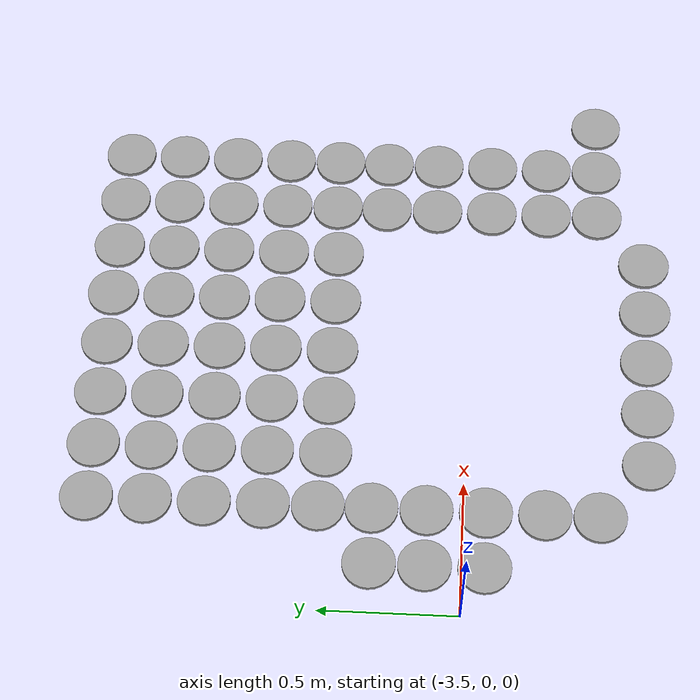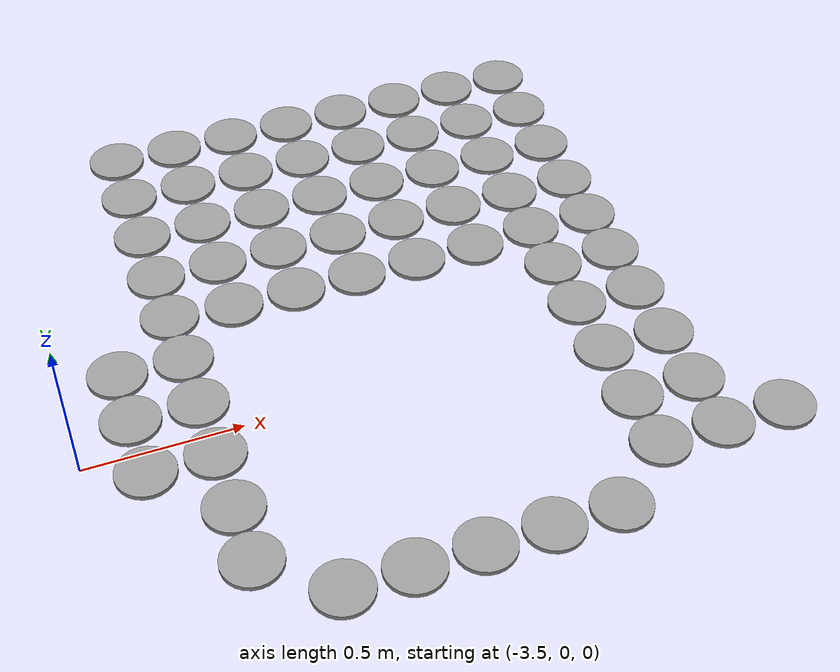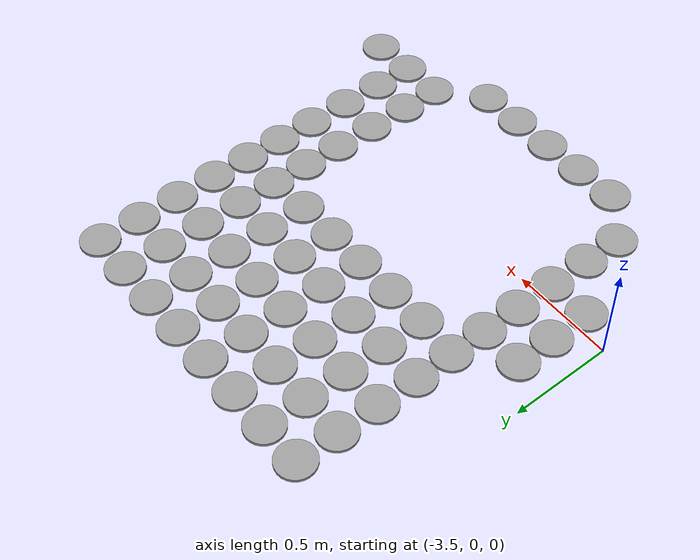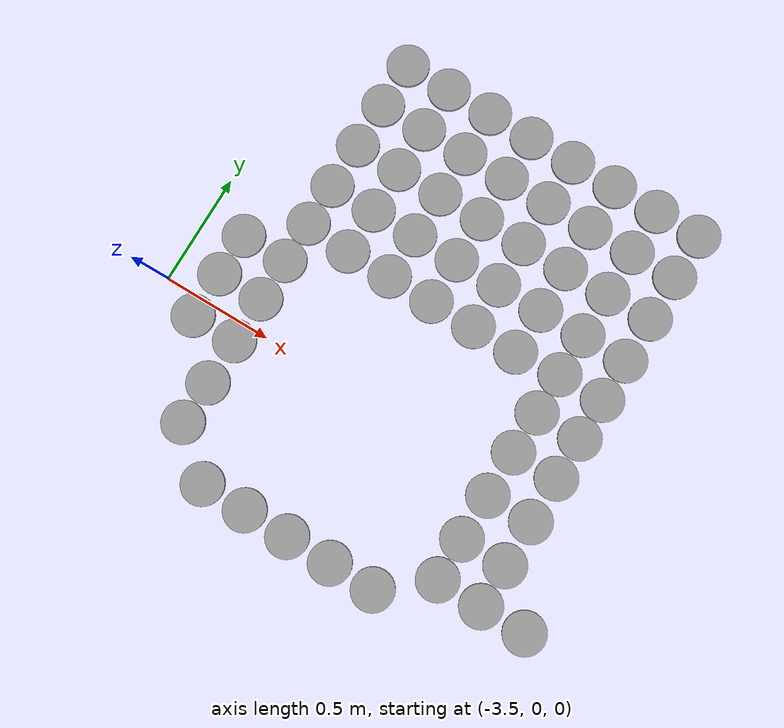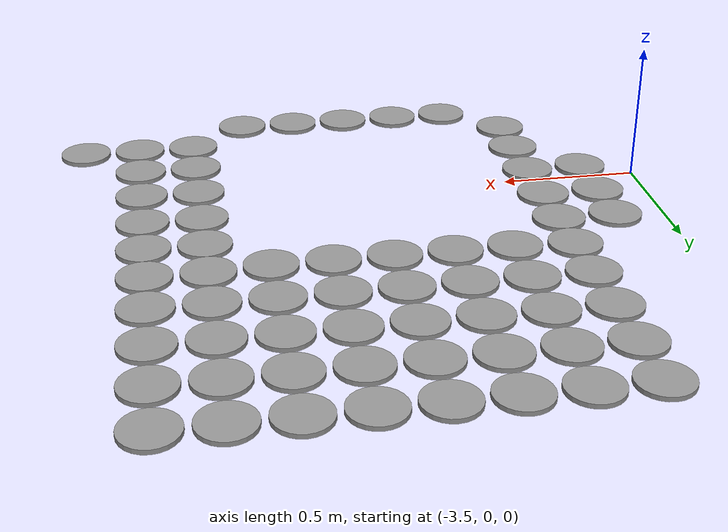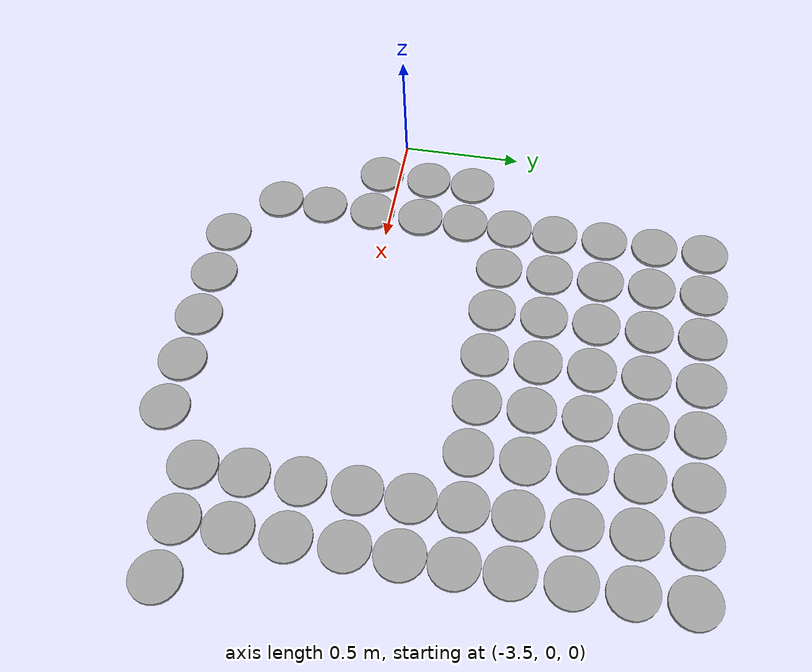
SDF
<sdf version="1.6">
 <world name="default">
  <model name="unit_cylinder_clone_45">
   <pose>-3.11 0.515077 0.008111 0 -0 0</pose>
   <link name="link">
    <inertial>
     <mass>1</mass>
     <inertia><ixx>0.145833</ixx><ixy>0</ixy><ixz>0</ixz><iyy>0.145833</iyy><iyz>0</iyz><izz>0.125</izz></inertia>
    </inertial>
    <collision name="collision">
     <geometry><cylinder><radius>0.0950718</radius><length>0.0162339</length></cylinder></geometry>
     <max_contacts>5</max_contacts>
    </collision>
    <visual name="visual">
     <geometry><cylinder><radius>0.0950718</radius><length>0.0162339</length></cylinder></geometry>
     <material>
      <script><name>Gazebo/Grey</name><uri>file://media/materials/scripts/gazebo.material</uri></script>
     </material>
    </visual>
   </link>
  </model>
  <model name="unit_cylinder_clone_46">
   <pose>-3.11 0.71 0.008111 0 -0 0</pose>
   <link name="link">
    <inertial>
     <mass>1</mass>
     <inertia><ixx>0.145833</ixx><ixy>0</ixy><ixz>0</ixz><iyy>0.145833</iyy><iyz>0</iyz><izz>0.125</izz></inertia>
    </inertial>
    <collision name="collision">
     <geometry><cylinder><radius>0.0950718</radius><length>0.0162339</length></cylinder></geometry>
     <max_contacts>5</max_contacts>
    </collision>
    <visual name="visual">
     <geometry><cylinder><radius>0.0950718</radius><length>0.0162339</length></cylinder></geometry>
     <material>
      <script><name>Gazebo/Grey</name><uri>file://media/materials/scripts/gazebo.material</uri></script>
     </material>
    </visual>
   </link>
  </model>
  <model name="unit_cylinder_clone_47">
   <pose>-3.11 0.92 0.008111 0 -0 0</pose>
   <link name="link">
    <inertial>
     <mass>1</mass>
     <inertia><ixx>0.145833</ixx><ixy>0</ixy><ixz>0</ixz><iyy>0.145833</iyy><iyz>0</iyz><izz>0.125</izz></inertia>
    </inertial>
    <collision name="collision">
     <geometry><cylinder><radius>0.0950718</radius><length>0.0162339</length></cylinder></geometry>
     <max_contacts>5</max_contacts>
    </collision>
    <visual name="visual">
     <geometry><cylinder><radius>0.0950718</radius><length>0.0162339</length></cylinder></geometry>
     <material>
      <script><name>Gazebo/Grey</name><uri>file://media/materials/scripts/gazebo.material</uri></script>
     </material>
    </visual>
   </link>
  </model>
  <model name="unit_cylinder_clone_48">
   <pose>-3.11 1.13 0.008111 0 -0 0</pose>
   <link name="link">
    <inertial>
     <mass>1</mass>
     <inertia><ixx>0.145833</ixx><ixy>0</ixy><ixz>0</ixz><iyy>0.145833</iyy><iyz>0</iyz><izz>0.125</izz></inertia>
    </inertial>
    <collision name="collision">
     <geometry><cylinder><radius>0.0950718</radius><length>0.0162339</length></cylinder></geometry>
     <max_contacts>5</max_contacts>
    </collision>
    <visual name="visual">
     <geometry><cylinder><radius>0.0950718</radius><length>0.0162339</length></cylinder></geometry>
     <material>
      <script><name>Gazebo/Grey</name><uri>file://media/materials/scripts/gazebo.material</uri></script>
     </material>
    </visual>
   </link>
  </model>
  <model name="unit_cylinder_clone_49">
   <pose>-3.11 1.34 0.008111 0 -0 0</pose>
   <link name="link">
    <inertial>
     <mass>1</mass>
     <inertia><ixx>0.145833</ixx><ixy>0</ixy><ixz>0</ixz><iyy>0.145833</iyy><iyz>0</iyz><izz>0.125</izz></inertia>
    </inertial>
    <collision name="collision">
     <geometry><cylinder><radius>0.0950718</radius><length>0.0162339</length></cylinder></geometry>
     <max_contacts>5</max_contacts>
    </collision>
    <visual name="visual">
     <geometry><cylinder><radius>0.0950718</radius><length>0.0162339</length></cylinder></geometry>
     <material>
      <script><name>Gazebo/Grey</name><uri>file://media/materials/scripts/gazebo.material</uri></script>
     </material>
    </visual>
   </link>
  </model>
  <model name="unit_cylinder_clone_50">
   <pose>-2.9 0.5 0.008111 0 -0 0</pose>
   <link name="link">
    <inertial>
     <mass>1</mass>
     <inertia><ixx>0.145833</ixx><ixy>0</ixy><ixz>0</ixz><iyy>0.145833</iyy><iyz>0</iyz><izz>0.125</izz></inertia>
    </inertial>
    <collision name="collision">
     <geometry><cylinder><radius>0.0950718</radius><length>0.0162339</length></cylinder></geometry>
     <max_contacts>5</max_contacts>
    </collision>
    <visual name="visual">
     <geometry><cylinder><radius>0.0950718</radius><length>0.0162339</length></cylinder></geometry>
     <material>
      <script><name>Gazebo/Grey</name><uri>file://media/materials/scripts/gazebo.material</uri></script>
     </material>
    </visual>
   </link>
  </model>
  <model name="unit_cylinder_clone_51">
   <pose>-2.9 0.71 0.008111 0 -0 0</pose>
   <link name="link">
    <inertial>
     <mass>1</mass>
     <inertia><ixx>0.145833</ixx><ixy>0</ixy><ixz>0</ixz><iyy>0.145833</iyy><iyz>0</iyz><izz>0.125</izz></inertia>
    </inertial>
    <collision name="collision">
     <geometry><cylinder><radius>0.0950718</radius><length>0.0162339</length></cylinder></geometry>
     <max_contacts>5</max_contacts>
    </collision>
    <visual name="visual">
     <geometry><cylinder><radius>0.0950718</radius><length>0.0162339</length></cylinder></geometry>
     <material>
      <script><name>Gazebo/Grey</name><uri>file://media/materials/scripts/gazebo.material</uri></script>
     </material>
    </visual>
   </link>
  </model>
  <model name="unit_cylinder_clone_52">
   <pose>-2.9 0.92 0.008111 0 -0 0</pose>
   <link name="link">
    <inertial>
     <mass>1</mass>
     <inertia><ixx>0.145833</ixx><ixy>0</ixy><ixz>0</ixz><iyy>0.145833</iyy><iyz>0</iyz><izz>0.125</izz></inertia>
    </inertial>
    <collision name="collision">
     <geometry><cylinder><radius>0.0950718</radius><length>0.0162339</length></cylinder></geometry>
     <max_contacts>5</max_contacts>
    </collision>
    <visual name="visual">
     <geometry><cylinder><radius>0.0950718</radius><length>0.0162339</length></cylinder></geometry>
     <material>
      <script><name>Gazebo/Grey</name><uri>file://media/materials/scripts/gazebo.material</uri></script>
     </material>
    </visual>
   </link>
  </model>
  <model name="unit_cylinder_clone_53">
   <pose>-2.9 1.13 0.008111 0 -0 0</pose>
   <link name="link">
    <inertial>
     <mass>1</mass>
     <inertia><ixx>0.145833</ixx><ixy>0</ixy><ixz>0</ixz><iyy>0.145833</iyy><iyz>0</iyz><izz>0.125</izz></inertia>
    </inertial>
    <collision name="collision">
     <geometry><cylinder><radius>0.0950718</radius><length>0.0162339</length></cylinder></geometry>
     <max_contacts>5</max_contacts>
    </collision>
    <visual name="visual">
     <geometry><cylinder><radius>0.0950718</radius><length>0.0162339</length></cylinder></geometry>
     <material>
      <script><name>Gazebo/Grey</name><uri>file://media/materials/scripts/gazebo.material</uri></script>
     </material>
    </visual>
   </link>
  </model>
  <model name="unit_cylinder_clone_54">
   <pose>-2.9 1.34 0.008111 0 -0 0</pose>
   <link name="link">
    <inertial>
     <mass>1</mass>
     <inertia><ixx>0.145833</ixx><ixy>0</ixy><ixz>0</ixz><iyy>0.145833</iyy><iyz>0</iyz><izz>0.125</izz></inertia>
    </inertial>
    <collision name="collision">
     <geometry><cylinder><radius>0.0950718</radius><length>0.0162339</length></cylinder></geometry>
     <max_contacts>5</max_contacts>
    </collision>
    <visual name="visual">
     <geometry><cylinder><radius>0.0950718</radius><length>0.0162339</length></cylinder></geometry>
     <material>
      <script><name>Gazebo/Grey</name><uri>file://media/materials/scripts/gazebo.material</uri></script>
     </material>
    </visual>
   </link>
  </model>
  <model name="unit_cylinder_clone_55">
   <pose>-2.69 0.5 0.008111 0 -0 0</pose>
   <link name="link">
    <inertial>
     <mass>1</mass>
     <inertia><ixx>0.145833</ixx><ixy>0</ixy><ixz>0</ixz><iyy>0.145833</iyy><iyz>0</iyz><izz>0.125</izz></inertia>
    </inertial>
    <collision name="collision">
     <geometry><cylinder><radius>0.0950718</radius><length>0.0162339</length></cylinder></geometry>
     <max_contacts>5</max_contacts>
    </collision>
    <visual name="visual">
     <geometry><cylinder><radius>0.0950718</radius><length>0.0162339</length></cylinder></geometry>
     <material>
      <script><name>Gazebo/Grey</name><uri>file://media/materials/scripts/gazebo.material</uri></script>
     </material>
    </visual>
   </link>
  </model>
  <model name="unit_cylinder_clone_56">
   <pose>-2.69 0.71 0.008111 0 -0 0</pose>
   <link name="link">
    <inertial>
     <mass>1</mass>
     <inertia><ixx>0.145833</ixx><ixy>0</ixy><ixz>0</ixz><iyy>0.145833</iyy><iyz>0</iyz><izz>0.125</izz></inertia>
    </inertial>
    <collision name="collision">
     <geometry><cylinder><radius>0.0950718</radius><length>0.0162339</length></cylinder></geometry>
     <max_contacts>5</max_contacts>
    </collision>
    <visual name="visual">
     <geometry><cylinder><radius>0.0950718</radius><length>0.0162339</length></cylinder></geometry>
     <material>
      <script><name>Gazebo/Grey</name><uri>file://media/materials/scripts/gazebo.material</uri></script>
     </material>
    </visual>
   </link>
  </model>
  <model name="unit_cylinder_clone_57">
   <pose>-2.69 0.92 0.008111 0 -0 0</pose>
   <link name="link">
    <inertial>
     <mass>1</mass>
     <inertia><ixx>0.145833</ixx><ixy>0</ixy><ixz>0</ixz><iyy>0.145833</iyy><iyz>0</iyz><izz>0.125</izz></inertia>
    </inertial>
    <collision name="collision">
     <geometry><cylinder><radius>0.0950718</radius><length>0.0162339</length></cylinder></geometry>
     <max_contacts>5</max_contacts>
    </collision>
    <visual name="visual">
     <geometry><cylinder><radius>0.0950718</radius><length>0.0162339</length></cylinder></geometry>
     <material>
      <script><name>Gazebo/Grey</name><uri>file://media/materials/scripts/gazebo.material</uri></script>
     </material>
    </visual>
   </link>
  </model>
  <model name="unit_cylinder_clone_58">
   <pose>-2.69 1.13 0.008111 0 -0 0</pose>
   <link name="link">
    <inertial>
     <mass>1</mass>
     <inertia><ixx>0.145833</ixx><ixy>0</ixy><ixz>0</ixz><iyy>0.145833</iyy><iyz>0</iyz><izz>0.125</izz></inertia>
    </inertial>
    <collision name="collision">
     <geometry><cylinder><radius>0.0950718</radius><length>0.0162339</length></cylinder></geometry>
     <max_contacts>5</max_contacts>
    </collision>
    <visual name="visual">
     <geometry><cylinder><radius>0.0950718</radius><length>0.0162339</length></cylinder></geometry>
     <material>
      <script><name>Gazebo/Grey</name><uri>file://media/materials/scripts/gazebo.material</uri></script>
     </material>
    </visual>
   </link>
  </model>
  <model name="unit_cylinder_clone_59">
   <pose>-2.69 1.34 0.008111 0 -0 0</pose>
   <link name="link">
    <inertial>
     <mass>1</mass>
     <inertia><ixx>0.145833</ixx><ixy>0</ixy><ixz>0</ixz><iyy>0.145833</iyy><iyz>0</iyz><izz>0.125</izz></inertia>
    </inertial>
    <collision name="collision">
     <geometry><cylinder><radius>0.0950718</radius><length>0.0162339</length></cylinder></geometry>
     <max_contacts>5</max_contacts>
    </collision>
    <visual name="visual">
     <geometry><cylinder><radius>0.0950718</radius><length>0.0162339</length></cylinder></geometry>
     <material>
      <script><name>Gazebo/Grey</name><uri>file://media/materials/scripts/gazebo.material</uri></script>
     </material>
    </visual>
   </link>
  </model>
  <model name="unit_cylinder_clone_60">
   <pose>-2.48 0.5 0.008111 0 -0 0</pose>
   <link name="link">
    <inertial>
     <mass>1</mass>
     <inertia><ixx>0.145833</ixx><ixy>0</ixy><ixz>0</ixz><iyy>0.145833</iyy><iyz>0</iyz><izz>0.125</izz></inertia>
    </inertial>
    <collision name="collision">
     <geometry><cylinder><radius>0.0950718</radius><length>0.0162339</length></cylinder></geometry>
     <max_contacts>5</max_contacts>
    </collision>
    <visual name="visual">
     <geometry><cylinder><radius>0.0950718</radius><length>0.0162339</length></cylinder></geometry>
     <material>
      <script><name>Gazebo/Grey</name><uri>file://media/materials/scripts/gazebo.material</uri></script>
     </material>
    </visual>
   </link>
  </model>
  <model name="unit_cylinder_clone_61">
   <pose>-2.48 0.71 0.008111 0 -0 0</pose>
   <link name="link">
    <inertial>
     <mass>1</mass>
     <inertia><ixx>0.145833</ixx><ixy>0</ixy><ixz>0</ixz><iyy>0.145833</iyy><iyz>0</iyz><izz>0.125</izz></inertia>
    </inertial>
    <collision name="collision">
     <geometry><cylinder><radius>0.0950718</radius><length>0.0162339</length></cylinder></geometry>
     <max_contacts>5</max_contacts>
    </collision>
    <visual name="visual">
     <geometry><cylinder><radius>0.0950718</radius><length>0.0162339</length></cylinder></geometry>
     <material>
      <script><name>Gazebo/Grey</name><uri>file://media/materials/scripts/gazebo.material</uri></script>
     </material>
    </visual>
   </link>
  </model>
  <model name="unit_cylinder_clone_62">
   <pose>-2.48 0.92 0.008111 0 -0 0</pose>
   <link name="link">
    <inertial>
     <mass>1</mass>
     <inertia><ixx>0.145833</ixx><ixy>0</ixy><ixz>0</ixz><iyy>0.145833</iyy><iyz>0</iyz><izz>0.125</izz></inertia>
    </inertial>
    <collision name="collision">
     <geometry><cylinder><radius>0.0950718</radius><length>0.0162339</length></cylinder></geometry>
     <max_contacts>5</max_contacts>
    </collision>
    <visual name="visual">
     <geometry><cylinder><radius>0.0950718</radius><length>0.0162339</length></cylinder></geometry>
     <material>
      <script><name>Gazebo/Grey</name><uri>file://media/materials/scripts/gazebo.material</uri></script>
     </material>
    </visual>
   </link>
  </model>
  <model name="unit_cylinder_clone_63">
   <pose>-2.48 1.13 0.008111 0 -0 0</pose>
   <link name="link">
    <inertial>
     <mass>1</mass>
     <inertia><ixx>0.145833</ixx><ixy>0</ixy><ixz>0</ixz><iyy>0.145833</iyy><iyz>0</iyz><izz>0.125</izz></inertia>
    </inertial>
    <collision name="collision">
     <geometry><cylinder><radius>0.0950718</radius><length>0.0162339</length></cylinder></geometry>
     <max_contacts>5</max_contacts>
    </collision>
    <visual name="visual">
     <geometry><cylinder><radius>0.0950718</radius><length>0.0162339</length></cylinder></geometry>
     <material>
      <script><name>Gazebo/Grey</name><uri>file://media/materials/scripts/gazebo.material</uri></script>
     </material>
    </visual>
   </link>
  </model>
  <model name="unit_cylinder_clone_64">
   <pose>-2.48 1.34 0.008111 0 -0 0</pose>
   <link name="link">
    <inertial>
     <mass>1</mass>
     <inertia><ixx>0.145833</ixx><ixy>0</ixy><ixz>0</ixz><iyy>0.145833</iyy><iyz>0</iyz><izz>0.125</izz></inertia>
    </inertial>
    <collision name="collision">
     <geometry><cylinder><radius>0.0950718</radius><length>0.0162339</length></cylinder></geometry>
     <max_contacts>5</max_contacts>
    </collision>
    <visual name="visual">
     <geometry><cylinder><radius>0.0950718</radius><length>0.0162339</length></cylinder></geometry>
     <material>
      <script><name>Gazebo/Grey</name><uri>file://media/materials/scripts/gazebo.material</uri></script>
     </material>
    </visual>
   </link>
  </model>
  <model name="unit_cylinder_clone_65">
   <pose>-2.27 0.5 0.008111 0 -0 0</pose>
   <link name="link">
    <inertial>
     <mass>1</mass>
     <inertia><ixx>0.145833</ixx><ixy>0</ixy><ixz>0</ixz><iyy>0.145833</iyy><iyz>0</iyz><izz>0.125</izz></inertia>
    </inertial>
    <collision name="collision">
     <geometry><cylinder><radius>0.0950718</radius><length>0.0162339</length></cylinder></geometry>
     <max_contacts>5</max_contacts>
    </collision>
    <visual name="visual">
     <geometry><cylinder><radius>0.0950718</radius><length>0.0162339</length></cylinder></geometry>
     <material>
      <script><name>Gazebo/Grey</name><uri>file://media/materials/scripts/gazebo.material</uri></script>
     </material>
    </visual>
   </link>
  </model>
  <model name="unit_cylinder_clone_66">
   <pose>-2.27 0.71 0.008111 0 -0 0</pose>
   <link name="link">
    <inertial>
     <mass>1</mass>
     <inertia><ixx>0.145833</ixx><ixy>0</ixy><ixz>0</ixz><iyy>0.145833</iyy><iyz>0</iyz><izz>0.125</izz></inertia>
    </inertial>
    <collision name="collision">
     <geometry><cylinder><radius>0.0950718</radius><length>0.0162339</length></cylinder></geometry>
     <max_contacts>5</max_contacts>
    </collision>
    <visual name="visual">
     <geometry><cylinder><radius>0.0950718</radius><length>0.0162339</length></cylinder></geometry>
     <material>
      <script><name>Gazebo/Grey</name><uri>file://media/materials/scripts/gazebo.material</uri></script>
     </material>
    </visual>
   </link>
  </model>
  <model name="unit_cylinder_clone_67">
   <pose>-2.27 0.92 0.008111 0 -0 0</pose>
   <link name="link">
    <inertial>
     <mass>1</mass>
     <inertia><ixx>0.145833</ixx><ixy>0</ixy><ixz>0</ixz><iyy>0.145833</iyy><iyz>0</iyz><izz>0.125</izz></inertia>
    </inertial>
    <collision name="collision">
     <geometry><cylinder><radius>0.0950718</radius><length>0.0162339</length></cylinder></geometry>
     <max_contacts>5</max_contacts>
    </collision>
    <visual name="visual">
     <geometry><cylinder><radius>0.0950718</radius><length>0.0162339</length></cylinder></geometry>
     <material>
      <script><name>Gazebo/Grey</name><uri>file://media/materials/scripts/gazebo.material</uri></script>
     </material>
    </visual>
   </link>
  </model>
  <model name="unit_cylinder_clone_68">
   <pose>-2.27 1.13 0.008111 0 -0 0</pose>
   <link name="link">
    <inertial>
     <mass>1</mass>
     <inertia><ixx>0.145833</ixx><ixy>0</ixy><ixz>0</ixz><iyy>0.145833</iyy><iyz>0</iyz><izz>0.125</izz></inertia>
    </inertial>
    <collision name="collision">
     <geometry><cylinder><radius>0.0950718</radius><length>0.0162339</length></cylinder></geometry>
     <max_contacts>5</max_contacts>
    </collision>
    <visual name="visual">
     <geometry><cylinder><radius>0.0950718</radius><length>0.0162339</length></cylinder></geometry>
     <material>
      <script><name>Gazebo/Grey</name><uri>file://media/materials/scripts/gazebo.material</uri></script>
     </material>
    </visual>
   </link>
  </model>
  <model name="unit_cylinder_clone_69">
   <pose>-2.27 1.34 0.008111 0 -0 0</pose>
   <link name="link">
    <inertial>
     <mass>1</mass>
     <inertia><ixx>0.145833</ixx><ixy>0</ixy><ixz>0</ixz><iyy>0.145833</iyy><iyz>0</iyz><izz>0.125</izz></inertia>
    </inertial>
    <collision name="collision">
     <geometry><cylinder><radius>0.0950718</radius><length>0.0162339</length></cylinder></geometry>
     <max_contacts>5</max_contacts>
    </collision>
    <visual name="visual">
     <geometry><cylinder><radius>0.0950718</radius><length>0.0162339</length></cylinder></geometry>
     <material>
      <script><name>Gazebo/Grey</name><uri>file://media/materials/scripts/gazebo.material</uri></script>
     </material>
    </visual>
   </link>
  </model>
  <model name="unit_cylinder_clone_70">
   <pose>-2.06 0.5 0.008111 0 -0 0</pose>
   <link name="link">
    <inertial>
     <mass>1</mass>
     <inertia><ixx>0.145833</ixx><ixy>0</ixy><ixz>0</ixz><iyy>0.145833</iyy><iyz>0</iyz><izz>0.125</izz></inertia>
    </inertial>
    <collision name="collision">
     <geometry><cylinder><radius>0.0950718</radius><length>0.0162339</length></cylinder></geometry>
     <max_contacts>5</max_contacts>
    </collision>
    <visual name="visual">
     <geometry><cylinder><radius>0.0950718</radius><length>0.0162339</length></cylinder></geometry>
     <material>
      <script><name>Gazebo/Grey</name><uri>file://media/materials/scripts/gazebo.material</uri></script>
     </material>
    </visual>
   </link>
  </model>
  <model name="unit_cylinder_clone_71">
   <pose>-2.06 0.71 0.008111 0 -0 0</pose>
   <link name="link">
    <inertial>
     <mass>1</mass>
     <inertia><ixx>0.145833</ixx><ixy>0</ixy><ixz>0</ixz><iyy>0.145833</iyy><iyz>0</iyz><izz>0.125</izz></inertia>
    </inertial>
    <collision name="collision">
     <geometry><cylinder><radius>0.0950718</radius><length>0.0162339</length></cylinder></geometry>
     <max_contacts>5</max_contacts>
    </collision>
    <visual name="visual">
     <geometry><cylinder><radius>0.0950718</radius><length>0.0162339</length></cylinder></geometry>
     <material>
      <script><name>Gazebo/Grey</name><uri>file://media/materials/scripts/gazebo.material</uri></script>
     </material>
    </visual>
   </link>
  </model>
  <model name="unit_cylinder_clone_72">
   <pose>-2.06 0.92 0.008111 0 -0 0</pose>
   <link name="link">
    <inertial>
     <mass>1</mass>
     <inertia><ixx>0.145833</ixx><ixy>0</ixy><ixz>0</ixz><iyy>0.145833</iyy><iyz>0</iyz><izz>0.125</izz></inertia>
    </inertial>
    <collision name="collision">
     <geometry><cylinder><radius>0.0950718</radius><length>0.0162339</length></cylinder></geometry>
     <max_contacts>5</max_contacts>
    </collision>
    <visual name="visual">
     <geometry><cylinder><radius>0.0950718</radius><length>0.0162339</length></cylinder></geometry>
     <material>
      <script><name>Gazebo/Grey</name><uri>file://media/materials/scripts/gazebo.material</uri></script>
     </material>
    </visual>
   </link>
  </model>
  <model name="unit_cylinder_clone_73">
   <pose>-2.06 1.13 0.008111 0 -0 0</pose>
   <link name="link">
    <inertial>
     <mass>1</mass>
     <inertia><ixx>0.145833</ixx><ixy>0</ixy><ixz>0</ixz><iyy>0.145833</iyy><iyz>0</iyz><izz>0.125</izz></inertia>
    </inertial>
    <collision name="collision">
     <geometry><cylinder><radius>0.0950718</radius><length>0.0162339</length></cylinder></geometry>
     <max_contacts>5</max_contacts>
    </collision>
    <visual name="visual">
     <geometry><cylinder><radius>0.0950718</radius><length>0.0162339</length></cylinder></geometry>
     <material>
      <script><name>Gazebo/Grey</name><uri>file://media/materials/scripts/gazebo.material</uri></script>
     </material>
    </visual>
   </link>
  </model>
  <model name="unit_cylinder_clone_74">
   <pose>-2.06 1.34 0.008111 0 -0 0</pose>
   <link name="link">
    <inertial>
     <mass>1</mass>
     <inertia><ixx>0.145833</ixx><ixy>0</ixy><ixz>0</ixz><iyy>0.145833</iyy><iyz>0</iyz><izz>0.125</izz></inertia>
    </inertial>
    <collision name="collision">
     <geometry><cylinder><radius>0.0950718</radius><length>0.0162339</length></cylinder></geometry>
     <max_contacts>5</max_contacts>
    </collision>
    <visual name="visual">
     <geometry><cylinder><radius>0.0950718</radius><length>0.0162339</length></cylinder></geometry>
     <material>
      <script><name>Gazebo/Grey</name><uri>file://media/materials/scripts/gazebo.material</uri></script>
     </material>
    </visual>
   </link>
  </model>
  <model name="unit_cylinder_clone_75">
   <pose>-1.85 0.515077 0.008111 0 -0 0</pose>
   <link name="link">
    <inertial>
     <mass>1</mass>
     <inertia><ixx>0.145833</ixx><ixy>0</ixy><ixz>0</ixz><iyy>0.145833</iyy><iyz>0</iyz><izz>0.125</izz></inertia>
    </inertial>
    <collision name="collision">
     <geometry><cylinder><radius>0.0950718</radius><length>0.0162339</length></cylinder></geometry>
     <max_contacts>5</max_contacts>
    </collision>
    <visual name="visual">
     <geometry><cylinder><radius>0.0950718</radius><length>0.0162339</length></cylinder></geometry>
     <material>
      <script><name>Gazebo/Grey</name><uri>file://media/materials/scripts/gazebo.material</uri></script>
     </material>
    </visual>
   </link>
  </model>
  <model name="unit_cylinder_clone_76">
   <pose>-1.85 0.71 0.008111 0 -0 0</pose>
   <link name="link">
    <inertial>
     <mass>1</mass>
     <inertia><ixx>0.145833</ixx><ixy>0</ixy><ixz>0</ixz><iyy>0.145833</iyy><iyz>0</iyz><izz>0.125</izz></inertia>
    </inertial>
    <collision name="collision">
     <geometry><cylinder><radius>0.0950718</radius><length>0.0162339</length></cylinder></geometry>
     <max_contacts>5</max_contacts>
    </collision>
    <visual name="visual">
     <geometry><cylinder><radius>0.0950718</radius><length>0.0162339</length></cylinder></geometry>
     <material>
      <script><name>Gazebo/Grey</name><uri>file://media/materials/scripts/gazebo.material</uri></script>
     </material>
    </visual>
   </link>
  </model>
  <model name="unit_cylinder_clone_77">
   <pose>-1.85 0.92 0.008111 0 -0 0</pose>
   <link name="link">
    <inertial>
     <mass>1</mass>
     <inertia><ixx>0.145833</ixx><ixy>0</ixy><ixz>0</ixz><iyy>0.145833</iyy><iyz>0</iyz><izz>0.125</izz></inertia>
    </inertial>
    <collision name="collision">
     <geometry><cylinder><radius>0.0950718</radius><length>0.0162339</length></cylinder></geometry>
     <max_contacts>5</max_contacts>
    </collision>
    <visual name="visual">
     <geometry><cylinder><radius>0.0950718</radius><length>0.0162339</length></cylinder></geometry>
     <material>
      <script><name>Gazebo/Grey</name><uri>file://media/materials/scripts/gazebo.material</uri></script>
     </material>
    </visual>
   </link>
  </model>
  <model name="unit_cylinder_clone_78">
   <pose>-1.85 1.13 0.008111 0 -0 0</pose>
   <link name="link">
    <inertial>
     <mass>1</mass>
     <inertia><ixx>0.145833</ixx><ixy>0</ixy><ixz>0</ixz><iyy>0.145833</iyy><iyz>0</iyz><izz>0.125</izz></inertia>
    </inertial>
    <collision name="collision">
     <geometry><cylinder><radius>0.0950718</radius><length>0.0162339</length></cylinder></geometry>
     <max_contacts>5</max_contacts>
    </collision>
    <visual name="visual">
     <geometry><cylinder><radius>0.0950718</radius><length>0.0162339</length></cylinder></geometry>
     <material>
      <script><name>Gazebo/Grey</name><uri>file://media/materials/scripts/gazebo.material</uri></script>
     </material>
    </visual>
   </link>
  </model>
  <model name="unit_cylinder_clone_79">
   <pose>-1.85 1.34 0.008111 0 -0 0</pose>
   <link name="link">
    <inertial>
     <mass>1</mass>
     <inertia><ixx>0.145833</ixx><ixy>0</ixy><ixz>0</ixz><iyy>0.145833</iyy><iyz>0</iyz><izz>0.125</izz></inertia>
    </inertial>
    <collision name="collision">
     <geometry><cylinder><radius>0.0950718</radius><length>0.0162339</length></cylinder></geometry>
     <max_contacts>5</max_contacts>
    </collision>
    <visual name="visual">
     <geometry><cylinder><radius>0.0950718</radius><length>0.0162339</length></cylinder></geometry>
     <material>
      <script><name>Gazebo/Grey</name><uri>file://media/materials/scripts/gazebo.material</uri></script>
     </material>
    </visual>
   </link>
  </model>
  <model name="unit_cylinder_clone_80">
   <pose>-1.64 0.515077 0.008111 0 -0 0</pose>
   <link name="link">
    <inertial>
     <mass>1</mass>
     <inertia><ixx>0.145833</ixx><ixy>0</ixy><ixz>0</ixz><iyy>0.145833</iyy><iyz>0</iyz><izz>0.125</izz></inertia>
    </inertial>
    <collision name="collision">
     <geometry><cylinder><radius>0.0950718</radius><length>0.0162339</length></cylinder></geometry>
     <max_contacts>5</max_contacts>
    </collision>
    <visual name="visual">
     <geometry><cylinder><radius>0.0950718</radius><length>0.0162339</length></cylinder></geometry>
     <material>
      <script><name>Gazebo/Grey</name><uri>file://media/materials/scripts/gazebo.material</uri></script>
     </material>
    </visual>
   </link>
  </model>
  <model name="unit_cylinder_clone_81">
   <pose>-1.64 0.71 0.008111 0 -0 0</pose>
   <link name="link">
    <inertial>
     <mass>1</mass>
     <inertia><ixx>0.145833</ixx><ixy>0</ixy><ixz>0</ixz><iyy>0.145833</iyy><iyz>0</iyz><izz>0.125</izz></inertia>
    </inertial>
    <collision name="collision">
     <geometry><cylinder><radius>0.0950718</radius><length>0.0162339</length></cylinder></geometry>
     <max_contacts>5</max_contacts>
    </collision>
    <visual name="visual">
     <geometry><cylinder><radius>0.0950718</radius><length>0.0162339</length></cylinder></geometry>
     <material>
      <script><name>Gazebo/Grey</name><uri>file://media/materials/scripts/gazebo.material</uri></script>
     </material>
    </visual>
   </link>
  </model>
  <model name="unit_cylinder_clone_82">
   <pose>-1.64 0.92 0.008111 0 -0 0</pose>
   <link name="link">
    <inertial>
     <mass>1</mass>
     <inertia><ixx>0.145833</ixx><ixy>0</ixy><ixz>0</ixz><iyy>0.145833</iyy><iyz>0</iyz><izz>0.125</izz></inertia>
    </inertial>
    <collision name="collision">
     <geometry><cylinder><radius>0.0950718</radius><length>0.0162339</length></cylinder></geometry>
     <max_contacts>5</max_contacts>
    </collision>
    <visual name="visual">
     <geometry><cylinder><radius>0.0950718</radius><length>0.0162339</length></cylinder></geometry>
     <material>
      <script><name>Gazebo/Grey</name><uri>file://media/materials/scripts/gazebo.material</uri></script>
     </material>
    </visual>
   </link>
  </model>
  <model name="unit_cylinder_clone_83">
   <pose>-1.64 1.13 0.008111 0 -0 0</pose>
   <link name="link">
    <inertial>
     <mass>1</mass>
     <inertia><ixx>0.145833</ixx><ixy>0</ixy><ixz>0</ixz><iyy>0.145833</iyy><iyz>0</iyz><izz>0.125</izz></inertia>
    </inertial>
    <collision name="collision">
     <geometry><cylinder><radius>0.0950718</radius><length>0.0162339</length></cylinder></geometry>
     <max_contacts>5</max_contacts>
    </collision>
    <visual name="visual">
     <geometry><cylinder><radius>0.0950718</radius><length>0.0162339</length></cylinder></geometry>
     <material>
      <script><name>Gazebo/Grey</name><uri>file://media/materials/scripts/gazebo.material</uri></script>
     </material>
    </visual>
   </link>
  </model>
  <model name="unit_cylinder_clone_84">
   <pose>-1.64 1.34 0.008111 0 -0 0</pose>
   <link name="link">
    <inertial>
     <mass>1</mass>
     <inertia><ixx>0.145833</ixx><ixy>0</ixy><ixz>0</ixz><iyy>0.145833</iyy><iyz>0</iyz><izz>0.125</izz></inertia>
    </inertial>
    <collision name="collision">
     <geometry><cylinder><radius>0.0950718</radius><length>0.0162339</length></cylinder></geometry>
     <max_contacts>5</max_contacts>
    </collision>
    <visual name="visual">
     <geometry><cylinder><radius>0.0950718</radius><length>0.0162339</length></cylinder></geometry>
     <material>
      <script><name>Gazebo/Grey</name><uri>file://media/materials/scripts/gazebo.material</uri></script>
     </material>
    </visual>
   </link>
  </model>
  <model name="unit_cylinder_clone_292">
   <pose>-3.32 -0.08 0.008111 0 -0 0</pose>
   <link name="link">
    <inertial>
     <mass>1</mass>
     <inertia><ixx>0.145833</ixx><ixy>0</ixy><ixz>0</ixz><iyy>0.145833</iyy><iyz>0</iyz><izz>0.125</izz></inertia>
    </inertial>
    <collision name="collision">
     <geometry><cylinder><radius>0.0950718</radius><length>0.0162339</length></cylinder></geometry>
     <max_contacts>5</max_contacts>
    </collision>
    <visual name="visual">
     <geometry><cylinder><radius>0.0950718</radius><length>0.0162339</length></cylinder></geometry>
     <material>
      <script><name>Gazebo/Grey</name><uri>file://media/materials/scripts/gazebo.material</uri></script>
     </material>
    </visual>
   </link>
  </model>
  <model name="unit_cylinder_clone_293">
   <pose>-3.32 0.13 0.008111 0 -0 0</pose>
   <link name="link">
    <inertial>
     <mass>1</mass>
     <inertia><ixx>0.145833</ixx><ixy>0</ixy><ixz>0</ixz><iyy>0.145833</iyy><iyz>0</iyz><izz>0.125</izz></inertia>
    </inertial>
    <collision name="collision">
     <geometry><cylinder><radius>0.0950718</radius><length>0.0162339</length></cylinder></geometry>
     <max_contacts>5</max_contacts>
    </collision>
    <visual name="visual">
     <geometry><cylinder><radius>0.0950718</radius><length>0.0162339</length></cylinder></geometry>
     <material>
      <script><name>Gazebo/Grey</name><uri>file://media/materials/scripts/gazebo.material</uri></script>
     </material>
    </visual>
   </link>
  </model>
  <model name="unit_cylinder_clone_294">
   <pose>-3.32 0.324923 0.008111 0 -0 0</pose>
   <link name="link">
    <inertial>
     <mass>1</mass>
     <inertia><ixx>0.145833</ixx><ixy>0</ixy><ixz>0</ixz><iyy>0.145833</iyy><iyz>0</iyz><izz>0.125</izz></inertia>
    </inertial>
    <collision name="collision">
     <geometry><cylinder><radius>0.0950718</radius><length>0.0162339</length></cylinder></geometry>
     <max_contacts>5</max_contacts>
    </collision>
    <visual name="visual">
     <geometry><cylinder><radius>0.0950718</radius><length>0.0162339</length></cylinder></geometry>
     <material>
      <script><name>Gazebo/Grey</name><uri>file://media/materials/scripts/gazebo.material</uri></script>
     </material>
    </visual>
   </link>
  </model>
  <model name="unit_cylinder_clone_295">
   <pose>-3.11 -0.484923 0.008111 0 -0 0</pose>
   <link name="link">
    <inertial>
     <mass>1</mass>
     <inertia><ixx>0.145833</ixx><ixy>0</ixy><ixz>0</ixz><iyy>0.145833</iyy><iyz>0</iyz><izz>0.125</izz></inertia>
    </inertial>
    <collision name="collision">
     <geometry><cylinder><radius>0.0950718</radius><length>0.0162339</length></cylinder></geometry>
     <max_contacts>5</max_contacts>
    </collision>
    <visual name="visual">
     <geometry><cylinder><radius>0.0950718</radius><length>0.0162339</length></cylinder></geometry>
     <material>
      <script><name>Gazebo/Grey</name><uri>file://media/materials/scripts/gazebo.material</uri></script>
     </material>
    </visual>
   </link>
  </model>
  <model name="unit_cylinder_clone_296">
   <pose>-3.11 -0.29 0.008111 0 -0 0</pose>
   <link name="link">
    <inertial>
     <mass>1</mass>
     <inertia><ixx>0.145833</ixx><ixy>0</ixy><ixz>0</ixz><iyy>0.145833</iyy><iyz>0</iyz><izz>0.125</izz></inertia>
    </inertial>
    <collision name="collision">
     <geometry><cylinder><radius>0.0950718</radius><length>0.0162339</length></cylinder></geometry>
     <max_contacts>5</max_contacts>
    </collision>
    <visual name="visual">
     <geometry><cylinder><radius>0.0950718</radius><length>0.0162339</length></cylinder></geometry>
     <material>
      <script><name>Gazebo/Grey</name><uri>file://media/materials/scripts/gazebo.material</uri></script>
     </material>
    </visual>
   </link>
  </model>
  <model name="unit_cylinder_clone_297">
   <pose>-3.11 -0.08 0.008111 0 -0 0</pose>
   <link name="link">
    <inertial>
     <mass>1</mass>
     <inertia><ixx>0.145833</ixx><ixy>0</ixy><ixz>0</ixz><iyy>0.145833</iyy><iyz>0</iyz><izz>0.125</izz></inertia>
    </inertial>
    <collision name="collision">
     <geometry><cylinder><radius>0.0950718</radius><length>0.0162339</length></cylinder></geometry>
     <max_contacts>5</max_contacts>
    </collision>
    <visual name="visual">
     <geometry><cylinder><radius>0.0950718</radius><length>0.0162339</length></cylinder></geometry>
     <material>
      <script><name>Gazebo/Grey</name><uri>file://media/materials/scripts/gazebo.material</uri></script>
     </material>
    </visual>
   </link>
  </model>
  <model name="unit_cylinder_clone_298">
   <pose>-3.11 0.13 0.008111 0 -0 0</pose>
   <link name="link">
    <inertial>
     <mass>1</mass>
     <inertia><ixx>0.145833</ixx><ixy>0</ixy><ixz>0</ixz><iyy>0.145833</iyy><iyz>0</iyz><izz>0.125</izz></inertia>
    </inertial>
    <collision name="collision">
     <geometry><cylinder><radius>0.0950718</radius><length>0.0162339</length></cylinder></geometry>
     <max_contacts>5</max_contacts>
    </collision>
    <visual name="visual">
     <geometry><cylinder><radius>0.0950718</radius><length>0.0162339</length></cylinder></geometry>
     <material>
      <script><name>Gazebo/Grey</name><uri>file://media/materials/scripts/gazebo.material</uri></script>
     </material>
    </visual>
   </link>
  </model>
  <model name="unit_cylinder_clone_299">
   <pose>-3.11 0.324923 0.008111 0 -0 0</pose>
   <link name="link">
    <inertial>
     <mass>1</mass>
     <inertia><ixx>0.145833</ixx><ixy>0</ixy><ixz>0</ixz><iyy>0.145833</iyy><iyz>0</iyz><izz>0.125</izz></inertia>
    </inertial>
    <collision name="collision">
     <geometry><cylinder><radius>0.0950718</radius><length>0.0162339</length></cylinder></geometry>
     <max_contacts>5</max_contacts>
    </collision>
    <visual name="visual">
     <geometry><cylinder><radius>0.0950718</radius><length>0.0162339</length></cylinder></geometry>
     <material>
      <script><name>Gazebo/Grey</name><uri>file://media/materials/scripts/gazebo.material</uri></script>
     </material>
    </visual>
   </link>
  </model>
  <model name="unit_cylinder_clone_325">
   <pose>-1.85 -0.484923 0.008111 0 -0 0</pose>
   <link name="link">
    <inertial>
     <mass>1</mass>
     <inertia><ixx>0.145833</ixx><ixy>0</ixy><ixz>0</ixz><iyy>0.145833</iyy><iyz>0</iyz><izz>0.125</izz></inertia>
    </inertial>
    <collision name="collision">
     <geometry><cylinder><radius>0.0950718</radius><length>0.0162339</length></cylinder></geometry>
     <max_contacts>5</max_contacts>
    </collision>
    <visual name="visual">
     <geometry><cylinder><radius>0.0950718</radius><length>0.0162339</length></cylinder></geometry>
     <material>
      <script><name>Gazebo/Grey</name><uri>file://media/materials/scripts/gazebo.material</uri></script>
     </material>
    </visual>
   </link>
  </model>
  <model name="unit_cylinder_clone_326">
   <pose>-1.85 -0.29 0.008111 0 -0 0</pose>
   <link name="link">
    <inertial>
     <mass>1</mass>
     <inertia><ixx>0.145833</ixx><ixy>0</ixy><ixz>0</ixz><iyy>0.145833</iyy><iyz>0</iyz><izz>0.125</izz></inertia>
    </inertial>
    <collision name="collision">
     <geometry><cylinder><radius>0.0950718</radius><length>0.0162339</length></cylinder></geometry>
     <max_contacts>5</max_contacts>
    </collision>
    <visual name="visual">
     <geometry><cylinder><radius>0.0950718</radius><length>0.0162339</length></cylinder></geometry>
     <material>
      <script><name>Gazebo/Grey</name><uri>file://media/materials/scripts/gazebo.material</uri></script>
     </material>
    </visual>
   </link>
  </model>
  <model name="unit_cylinder_clone_327">
   <pose>-1.85 -0.08 0.008111 0 -0 0</pose>
   <link name="link">
    <inertial>
     <mass>1</mass>
     <inertia><ixx>0.145833</ixx><ixy>0</ixy><ixz>0</ixz><iyy>0.145833</iyy><iyz>0</iyz><izz>0.125</izz></inertia>
    </inertial>
    <collision name="collision">
     <geometry><cylinder><radius>0.0950718</radius><length>0.0162339</length></cylinder></geometry>
     <max_contacts>5</max_contacts>
    </collision>
    <visual name="visual">
     <geometry><cylinder><radius>0.0950718</radius><length>0.0162339</length></cylinder></geometry>
     <material>
      <script><name>Gazebo/Grey</name><uri>file://media/materials/scripts/gazebo.material</uri></script>
     </material>
    </visual>
   </link>
  </model>
  <model name="unit_cylinder_clone_328">
   <pose>-1.85 0.13 0.008111 0 -0 0</pose>
   <link name="link">
    <inertial>
     <mass>1</mass>
     <inertia><ixx>0.145833</ixx><ixy>0</ixy><ixz>0</ixz><iyy>0.145833</iyy><iyz>0</iyz><izz>0.125</izz></inertia>
    </inertial>
    <collision name="collision">
     <geometry><cylinder><radius>0.0950718</radius><length>0.0162339</length></cylinder></geometry>
     <max_contacts>5</max_contacts>
    </collision>
    <visual name="visual">
     <geometry><cylinder><radius>0.0950718</radius><length>0.0162339</length></cylinder></geometry>
     <material>
      <script><name>Gazebo/Grey</name><uri>file://media/materials/scripts/gazebo.material</uri></script>
     </material>
    </visual>
   </link>
  </model>
  <model name="unit_cylinder_clone_329">
   <pose>-1.85 0.324923 0.008111 0 -0 0</pose>
   <link name="link">
    <inertial>
     <mass>1</mass>
     <inertia><ixx>0.145833</ixx><ixy>0</ixy><ixz>0</ixz><iyy>0.145833</iyy><iyz>0</iyz><izz>0.125</izz></inertia>
    </inertial>
    <collision name="collision">
     <geometry><cylinder><radius>0.0950718</radius><length>0.0162339</length></cylinder></geometry>
     <max_contacts>5</max_contacts>
    </collision>
    <visual name="visual">
     <geometry><cylinder><radius>0.0950718</radius><length>0.0162339</length></cylinder></geometry>
     <material>
      <script><name>Gazebo/Grey</name><uri>file://media/materials/scripts/gazebo.material</uri></script>
     </material>
    </visual>
   </link>
  </model>
  <model name="unit_cylinder_clone_330">
   <pose>-1.64 -0.484923 0.008111 0 -0 0</pose>
   <link name="link">
    <inertial>
     <mass>1</mass>
     <inertia><ixx>0.145833</ixx><ixy>0</ixy><ixz>0</ixz><iyy>0.145833</iyy><iyz>0</iyz><izz>0.125</izz></inertia>
    </inertial>
    <collision name="collision">
     <geometry><cylinder><radius>0.0950718</radius><length>0.0162339</length></cylinder></geometry>
     <max_contacts>5</max_contacts>
    </collision>
    <visual name="visual">
     <geometry><cylinder><radius>0.0950718</radius><length>0.0162339</length></cylinder></geometry>
     <material>
      <script><name>Gazebo/Grey</name><uri>file://media/materials/scripts/gazebo.material</uri></script>
     </material>
    </visual>
   </link>
  </model>
  <model name="unit_cylinder_clone_331">
   <pose>-1.64 -0.29 0.008111 0 -0 0</pose>
   <link name="link">
    <inertial>
     <mass>1</mass>
     <inertia><ixx>0.145833</ixx><ixy>0</ixy><ixz>0</ixz><iyy>0.145833</iyy><iyz>0</iyz><izz>0.125</izz></inertia>
    </inertial>
    <collision name="collision">
     <geometry><cylinder><radius>0.0950718</radius><length>0.0162339</length></cylinder></geometry>
     <max_contacts>5</max_contacts>
    </collision>
    <visual name="visual">
     <geometry><cylinder><radius>0.0950718</radius><length>0.0162339</length></cylinder></geometry>
     <material>
      <script><name>Gazebo/Grey</name><uri>file://media/materials/scripts/gazebo.material</uri></script>
     </material>
    </visual>
   </link>
  </model>
  <model name="unit_cylinder_clone_332">
   <pose>-1.64 -0.08 0.008111 0 -0 0</pose>
   <link name="link">
    <inertial>
     <mass>1</mass>
     <inertia><ixx>0.145833</ixx><ixy>0</ixy><ixz>0</ixz><iyy>0.145833</iyy><iyz>0</iyz><izz>0.125</izz></inertia>
    </inertial>
    <collision name="collision">
     <geometry><cylinder><radius>0.0950718</radius><length>0.0162339</length></cylinder></geometry>
     <max_contacts>5</max_contacts>
    </collision>
    <visual name="visual">
     <geometry><cylinder><radius>0.0950718</radius><length>0.0162339</length></cylinder></geometry>
     <material>
      <script><name>Gazebo/Grey</name><uri>file://media/materials/scripts/gazebo.material</uri></script>
     </material>
    </visual>
   </link>
  </model>
  <model name="unit_cylinder_clone_333">
   <pose>-1.64 0.13 0.008111 0 -0 0</pose>
   <link name="link">
    <inertial>
     <mass>1</mass>
     <inertia><ixx>0.145833</ixx><ixy>0</ixy><ixz>0</ixz><iyy>0.145833</iyy><iyz>0</iyz><izz>0.125</izz></inertia>
    </inertial>
    <collision name="collision">
     <geometry><cylinder><radius>0.0950718</radius><length>0.0162339</length></cylinder></geometry>
     <max_contacts>5</max_contacts>
    </collision>
    <visual name="visual">
     <geometry><cylinder><radius>0.0950718</radius><length>0.0162339</length></cylinder></geometry>
     <material>
      <script><name>Gazebo/Grey</name><uri>file://media/materials/scripts/gazebo.material</uri></script>
     </material>
    </visual>
   </link>
  </model>
  <model name="unit_cylinder_clone_334">
   <pose>-1.64 0.324923 0.008111 0 -0 0</pose>
   <link name="link">
    <inertial>
     <mass>1</mass>
     <inertia><ixx>0.145833</ixx><ixy>0</ixy><ixz>0</ixz><iyy>0.145833</iyy><iyz>0</iyz><izz>0.125</izz></inertia>
    </inertial>
    <collision name="collision">
     <geometry><cylinder><radius>0.0950718</radius><length>0.0162339</length></cylinder></geometry>
     <max_contacts>5</max_contacts>
    </collision>
    <visual name="visual">
     <geometry><cylinder><radius>0.0950718</radius><length>0.0162339</length></cylinder></geometry>
     <material>
      <script><name>Gazebo/Grey</name><uri>file://media/materials/scripts/gazebo.material</uri></script>
     </material>
    </visual>
   </link>
  </model>
  <model name="unit_cylinder_clone_335">
   <pose>-1.43 -0.484923 0.008111 0 -0 0</pose>
   <link name="link">
    <inertial>
     <mass>1</mass>
     <inertia><ixx>0.145833</ixx><ixy>0</ixy><ixz>0</ixz><iyy>0.145833</iyy><iyz>0</iyz><izz>0.125</izz></inertia>
    </inertial>
    <collision name="collision">
     <geometry><cylinder><radius>0.0950718</radius><length>0.0162339</length></cylinder></geometry>
     <max_contacts>5</max_contacts>
    </collision>
    <visual name="visual">
     <geometry><cylinder><radius>0.0950718</radius><length>0.0162339</length></cylinder></geometry>
     <material>
      <script><name>Gazebo/Grey</name><uri>file://media/materials/scripts/gazebo.material</uri></script>
     </material>
    </visual>
   </link>
  </model>
  <model name="unit_cylinder_clone_554">
   <pose>-2.9 -0.66 0.008111 0 -0 0</pose>
   <link name="link">
    <inertial>
     <mass>1</mass>
     <inertia><ixx>0.145833</ixx><ixy>0</ixy><ixz>0</ixz><iyy>0.145833</iyy><iyz>0</iyz><izz>0.125</izz></inertia>
    </inertial>
    <collision name="collision">
     <geometry><cylinder><radius>0.0950718</radius><length>0.0162339</length></cylinder></geometry>
     <max_contacts>5</max_contacts>
    </collision>
    <visual name="visual">
     <geometry><cylinder><radius>0.0950718</radius><length>0.0162339</length></cylinder></geometry>
     <material>
      <script><name>Gazebo/Grey</name><uri>file://media/materials/scripts/gazebo.material</uri></script>
     </material>
    </visual>
   </link>
  </model>
  <model name="unit_cylinder_clone_559">
   <pose>-2.69 -0.66 0.008111 0 -0 0</pose>
   <link name="link">
    <inertial>
     <mass>1</mass>
     <inertia><ixx>0.145833</ixx><ixy>0</ixy><ixz>0</ixz><iyy>0.145833</iyy><iyz>0</iyz><izz>0.125</izz></inertia>
    </inertial>
    <collision name="collision">
     <geometry><cylinder><radius>0.0950718</radius><length>0.0162339</length></cylinder></geometry>
     <max_contacts>5</max_contacts>
    </collision>
    <visual name="visual">
     <geometry><cylinder><radius>0.0950718</radius><length>0.0162339</length></cylinder></geometry>
     <material>
      <script><name>Gazebo/Grey</name><uri>file://media/materials/scripts/gazebo.material</uri></script>
     </material>
    </visual>
   </link>
  </model>
  <model name="unit_cylinder_clone_564">
   <pose>-2.48 -0.66 0.008111 0 -0 0</pose>
   <link name="link">
    <inertial>
     <mass>1</mass>
     <inertia><ixx>0.145833</ixx><ixy>0</ixy><ixz>0</ixz><iyy>0.145833</iyy><iyz>0</iyz><izz>0.125</izz></inertia>
    </inertial>
    <collision name="collision">
     <geometry><cylinder><radius>0.0950718</radius><length>0.0162339</length></cylinder></geometry>
     <max_contacts>5</max_contacts>
    </collision>
    <visual name="visual">
     <geometry><cylinder><radius>0.0950718</radius><length>0.0162339</length></cylinder></geometry>
     <material>
      <script><name>Gazebo/Grey</name><uri>file://media/materials/scripts/gazebo.material</uri></script>
     </material>
    </visual>
   </link>
  </model>
  <model name="unit_cylinder_clone_569">
   <pose>-2.27 -0.66 0.008111 0 -0 0</pose>
   <link name="link">
    <inertial>
     <mass>1</mass>
     <inertia><ixx>0.145833</ixx><ixy>0</ixy><ixz>0</ixz><iyy>0.145833</iyy><iyz>0</iyz><izz>0.125</izz></inertia>
    </inertial>
    <collision name="collision">
     <geometry><cylinder><radius>0.0950718</radius><length>0.0162339</length></cylinder></geometry>
     <max_contacts>5</max_contacts>
    </collision>
    <visual name="visual">
     <geometry><cylinder><radius>0.0950718</radius><length>0.0162339</length></cylinder></geometry>
     <material>
      <script><name>Gazebo/Grey</name><uri>file://media/materials/scripts/gazebo.material</uri></script>
     </material>
    </visual>
   </link>
  </model>
  <model name="unit_cylinder_clone_574">
   <pose>-2.06 -0.66 0.008111 0 -0 0</pose>
   <link name="link">
    <inertial>
     <mass>1</mass>
     <inertia><ixx>0.145833</ixx><ixy>0</ixy><ixz>0</ixz><iyy>0.145833</iyy><iyz>0</iyz><izz>0.125</izz></inertia>
    </inertial>
    <collision name="collision">
     <geometry><cylinder><radius>0.0950718</radius><length>0.0162339</length></cylinder></geometry>
     <max_contacts>5</max_contacts>
    </collision>
    <visual name="visual">
     <geometry><cylinder><radius>0.0950718</radius><length>0.0162339</length></cylinder></geometry>
     <material>
      <script><name>Gazebo/Grey</name><uri>file://media/materials/scripts/gazebo.material</uri></script>
     </material>
    </visual>
   </link>
  </model>
 </world>
</sdf>
